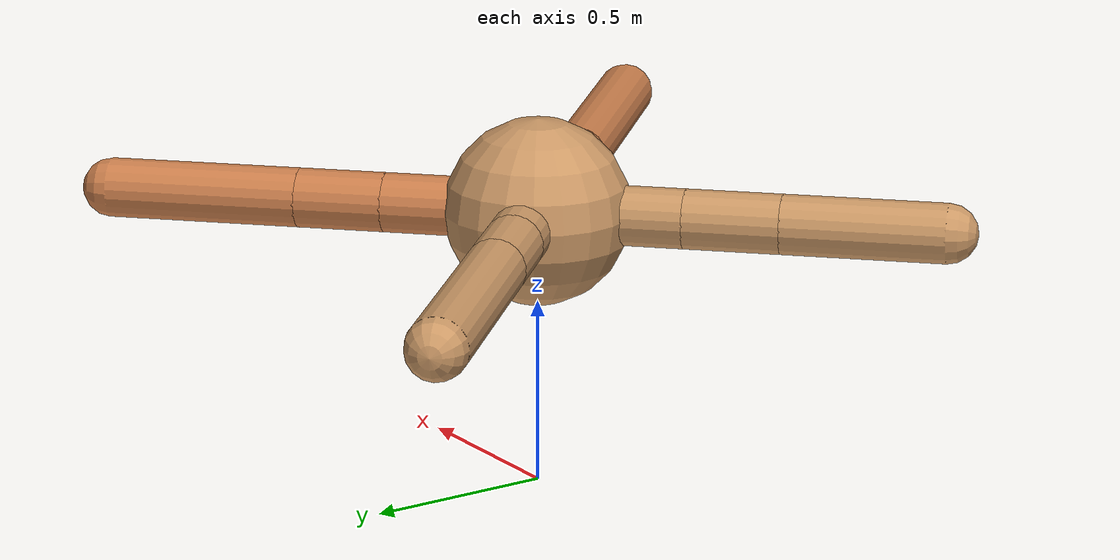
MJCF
<mujoco model="ant">
  <compiler angle="degree" coordinate="local" inertiafromgeom="true" />
  <option integrator="RK4" timestep="0.01" />
  <custom>
    <numeric data="0.0 0.0 0.55 1.0 0.0 0.0 0.0 0.0 1.0 0.0 -1.0 0.0 -1.0 0.0 1.0" name="init_qpos" />
  </custom>
  <default>
    <joint armature="1" damping="1" limited="true" />
    <geom conaffinity="0" condim="3" density="5.0" friction="1.5 0.1 0.1" margin="0.01" rgba="0.8 0.6 0.4 1" />
  </default>
  <worldbody>
    <body name="torso" pos="0 0 0.75">
      <geom name="torso_geom" pos="0 0 0" size="0.25" type="sphere" />

      <body name="front_left_leg" pos="0 0 0">
        <geom fromto="0.0 0.0 0.0 0.29172515492782336 0.29172515492782336 0.0" name="aux_1_geom" size="0.08" type="capsule" rgba=".8 .5 .3 1" />
        <body name="aux_1" pos="0.29172515492782336 0.29172515492782336 0.0">
          <joint axis="0 0 1" name="hip_1" pos="0.0 0.0 0.0" range="-40 40" type="hinge" />
          <geom fromto="0.0 0.0 0.0 0.16645783556751514 0.16645783556751514 0.0" name="left_leg_geom" size="0.08" type="capsule" rgba=".8 .5 .3 1" />
          <body pos="0.16645783556751514 0.16645783556751514 0.0" name="front_left_foot">
            <joint axis="-1 1 0" name="ankle_1" pos="0.0 0.0 0.0" range="30 100" type="hinge" />
            <geom fromto="0.0 0.0 0.0 0.367806998548895 0.367806998548895 0.0" name="left_ankle_geom" size="0.08" type="capsule" rgba=".8 .5 .3 1" />
          </body>
        </body>
      </body>
      <body name="front_right_leg" pos="0 0 0">
        <geom fromto="0.0 0.0 0.0 -0.22921299133721584 0.22921299133721584 0.0" name="aux_2_geom" size="0.08" type="capsule" />
        <body name="aux_2" pos="-0.22921299133721584 0.22921299133721584 0.0">
          <joint axis="0 0 1" name="hip_2" pos="0.0 0.0 0.0" range="-40 40" type="hinge" />
          <geom fromto="0.0 0.0 0.0 -0.15639249369092578 0.15639249369092578 0.0" name="right_leg_geom" size="0.08" type="capsule" />
          <body pos="-0.15639249369092578 0.15639249369092578 0.0" name="front_right_foot">
            <joint axis="1 1 0" name="ankle_2" pos="0.0 0.0 0.0" range="-100 -30" type="hinge" />
            <geom fromto="0.0 0.0 0.0 -0.4698506552415198 0.4698506552415198 0.0" name="right_ankle_geom" size="0.08" type="capsule" />
          </body>
        </body>
      </body>
      <body name="left_back_leg" pos="0 0 0">
        <geom fromto="0.0 0.0 0.0 -0.27783017148973455 -0.27783017148973455 0.0" name="aux_3_geom" size="0.08" type="capsule" />
        <body name="aux_3" pos="-0.27783017148973455 -0.27783017148973455 0.0">
          <joint axis="0 0 1" name="hip_3" pos="0.0 0.0 0.0" range="-40 40" type="hinge" />
          <geom fromto="0.0 0.0 0.0 -0.18107755410216203 -0.18107755410216203 0.0" name="back_leg_geom" size="0.08" type="capsule" />
          <body pos="-0.18107755410216203 -0.18107755410216203 0.0" name="left_back_foot">
            <joint axis="-1 1 0" name="ankle_3" pos="0.0 0.0 0.0" range="-100 -30" type="hinge" />
            <geom fromto="0.0 0.0 0.0 -0.30675896236617717 -0.30675896236617717 0.0" name="third_ankle_geom" size="0.08" type="capsule" />
          </body>
        </body>
      </body>
      <body name="right_back_leg" pos="0 0 0">
        <geom fromto="0.0 0.0 0.0 0.24333048830092935 -0.24333048830092935 0.0" name="aux_4_geom" size="0.08" type="capsule" rgba=".8 .5 .3 1" />
        <body name="aux_4" pos="0.24333048830092935 -0.24333048830092935 0.0">
          <joint axis="0 0 1" name="hip_4" pos="0.0 0.0 0.0" range="-40 40" type="hinge" />
          <geom fromto="0.0 0.0 0.0 0.16001200401625604 -0.16001200401625604 0.0" name="rightback_leg_geom" size="0.08" type="capsule" rgba=".8 .5 .3 1" />
          <body pos="0.16001200401625604 -0.16001200401625604 0.0" name="right_back_foot">
            <joint axis="1 1 0" name="ankle_4" pos="0.0 0.0 0.0" range="30 100" type="hinge" />
            <geom fromto="0.0 0.0 0.0 0.5268432590382746 -0.5268432590382746 0.0" name="fourth_ankle_geom" size="0.08" type="capsule" rgba=".8 .5 .3 1" />
          </body>
        </body>
      </body>
    </body>
  </worldbody>
  <actuator>
    <motor ctrllimited="true" ctrlrange="-1.0 1.0" joint="hip_4" gear="150" />
    <motor ctrllimited="true" ctrlrange="-1.0 1.0" joint="ankle_4" gear="150" />
    <motor ctrllimited="true" ctrlrange="-1.0 1.0" joint="hip_1" gear="150" />
    <motor ctrllimited="true" ctrlrange="-1.0 1.0" joint="ankle_1" gear="150" />
    <motor ctrllimited="true" ctrlrange="-1.0 1.0" joint="hip_2" gear="150" />
    <motor ctrllimited="true" ctrlrange="-1.0 1.0" joint="ankle_2" gear="150" />
    <motor ctrllimited="true" ctrlrange="-1.0 1.0" joint="hip_3" gear="150" />
    <motor ctrllimited="true" ctrlrange="-1.0 1.0" joint="ankle_3" gear="150" />
  </actuator>
</mujoco>
